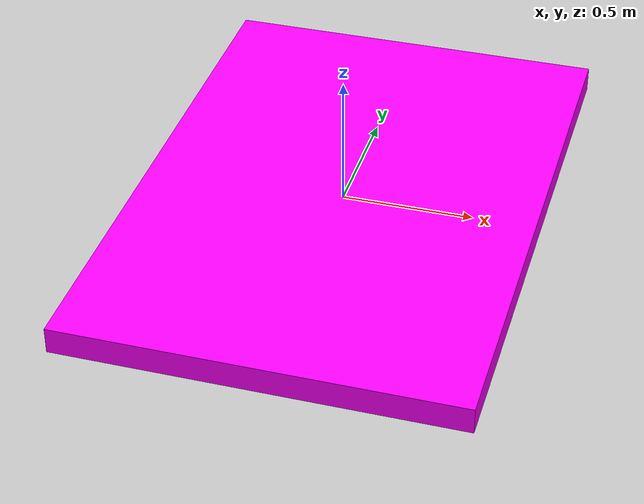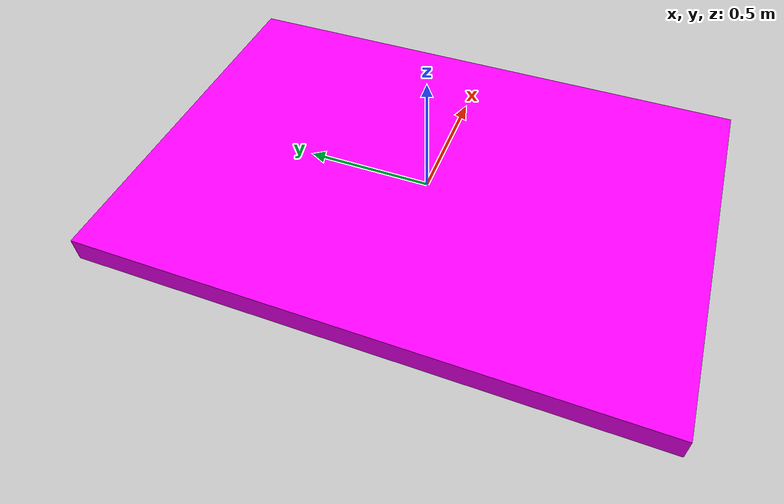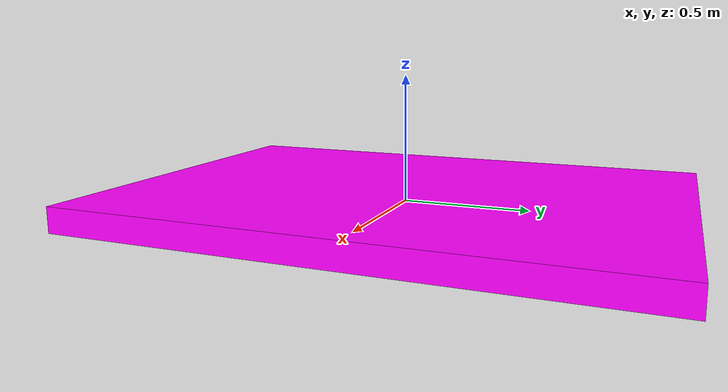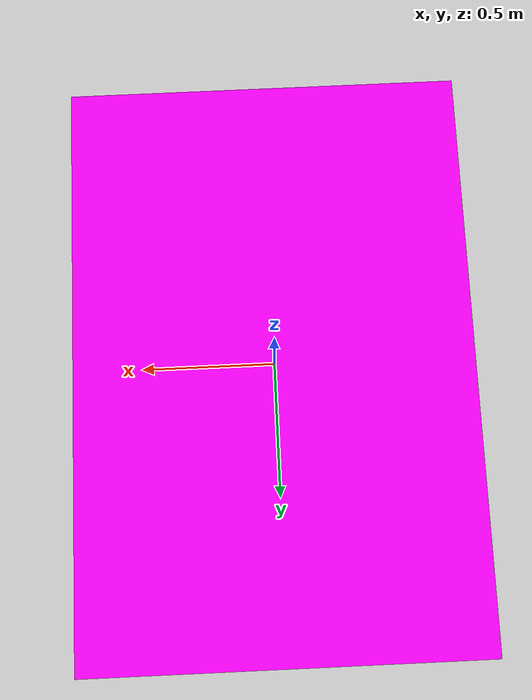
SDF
<?xml version="1.0"?>
<sdf version="1.7">
  <model name="table">
    <frame name="table_top_center">
      <pose>0 0 0 0 .7 0</pose>
    </frame>
    <link name="table_body">
      <visual name="table_visual">
        <geometry>
          <box>
            <size>1.5 2.1875 0.1</size>
          </box>
        </geometry>
        <material>
          <diffuse>1.0 0.0 1.0 1.0</diffuse>
        </material>
      </visual>
      <collision name="table_top">
        <pose> 0 0 -0.05 0 0 0</pose>
        <geometry>
          <box>
            <size>1.5 2.1875 0.1</size>
          </box>
        </geometry>
      </collision>
    </link>
  </model>
</sdf>
